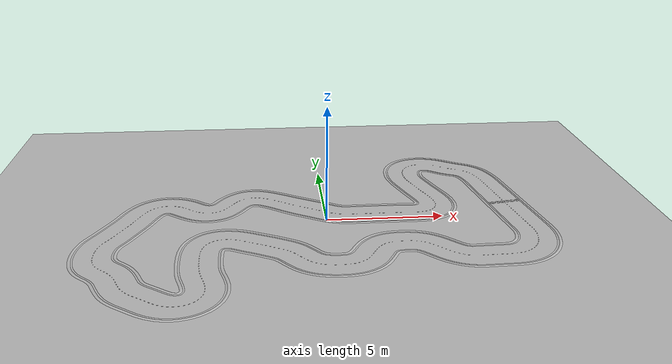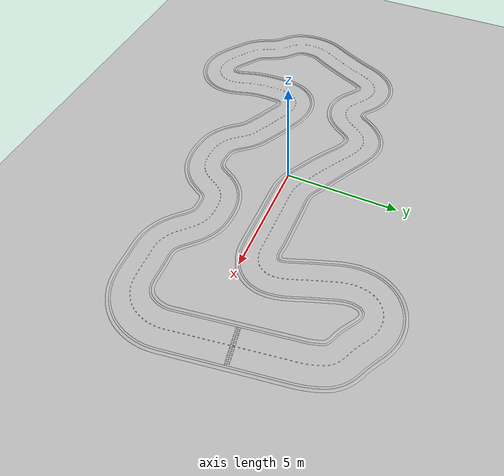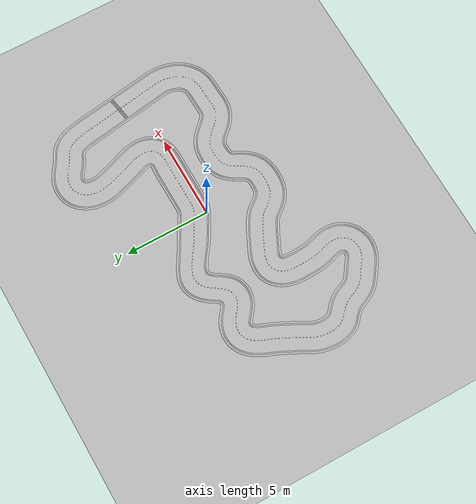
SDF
<?xml version="1.0"?>
<sdf version="1.7">
<world name="Singapore">
  <scene>
    <ambient>0.5 0.5 0.5 1.0</ambient>
    <shadows>0</shadows>
    <sky></sky>
  </scene>
  <include>
    <uri>model://sun</uri>
    <pose>0.0 0.0 15.0 0 0 0</pose>
    <cast_shadows>false</cast_shadows>
    <attenuation>
      <constant>0.5</constant>
      <linear>0.01</linear>
      <quadratic>0.0</quadratic>
      <range>100</range>
    </attenuation>
  </include>
  <light type="point" name="Light 1">
         <pose>0 0 15 0 0 0</pose>
         <diffuse>0.225 0.225 0.225 1</diffuse>
         <specular>.1 .1 .1 1</specular>
         <attenuation>
                <constant>0.4</constant>
                <linear>0.01</linear>
                <quadratic>0.00</quadratic>
                <range>50</range>
         </attenuation>
         <direction>0 0 -1</direction>
         <cast_shadows>false</cast_shadows>
  </light>
  <include>
    <uri>model://models/Singapore</uri>
    <pose>0 0 0 0 0 0</pose>
    <name>racetrack</name>
  </include>
</world>
</sdf>

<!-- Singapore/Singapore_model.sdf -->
<sdf version="1.7">
    <model name=" Singapore_model">
        <link name="Singapore_track_field">
            <collision name="collision">
                <pose>0 0 0 0 0 0</pose>
                <geometry>
                <mesh>
                <uri>model://meshes/Singapore/Singapore_track_field.dae</uri>
                </mesh>
                </geometry>
            </collision>
            <visual name="visual">
                <pose>0 0 0 0 0 0</pose>
                <geometry>
                <mesh>
                <uri>model://meshes/Singapore/Singapore_track_field.dae</uri>
                </mesh>
                </geometry>
            </visual>
        </link>

        <link name="Singapore_track_road">
            <visual name="visual">
                <pose>0 0 0 0 0 0</pose>
                <geometry>
                <mesh>
                <uri>model://meshes/Singapore/Singapore_track_road.dae</uri>
                </mesh>
                </geometry>
            </visual>
        </link>

        <link name="Singapore_track_road_barrier">
            <visual name="visual">
                <pose>0 0 0 0 0 0</pose>
                <geometry>
                <mesh>
                <uri>model://meshes/Singapore/Singapore_track_road_barrier.dae</uri>
                </mesh>
                </geometry>
            </visual>
        </link>

        <link name="Singapore_track_centerline">
            <visual name="visual">
                <pose>0 0 0 0 0 0</pose>
                <geometry>
                <mesh>
                <uri>model://meshes/Singapore/Singapore_track_centerline.dae</uri>
                </mesh>
                </geometry>
            </visual>
        </link>

        <link name="Singapore_track_road_outerline">
            <visual name="visual">
                <pose>0 0 0 0 0 0</pose>
                <geometry>
                <mesh>
                <uri>model://meshes/Singapore/Singapore_track_road_outerline.dae</uri>
                </mesh>
                </geometry>
            </visual>
        </link>

        <link name="Singapore_track_road_finishline">
            <visual name="visual">
                <pose>0.08 -0.5 0 0 0 0</pose>
                <geometry>
                <mesh>
                <uri>model://meshes/Singapore/Singapore_track_road_finishline.dae</uri>
                </mesh>
                </geometry>
            </visual>
        </link>
        <static>1</static>
    </model>
</sdf>
